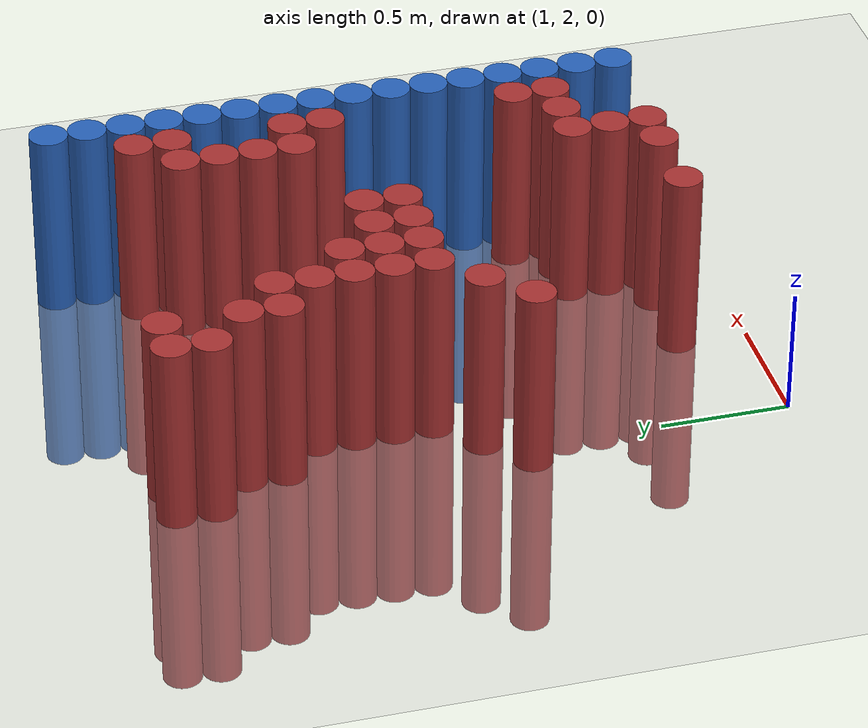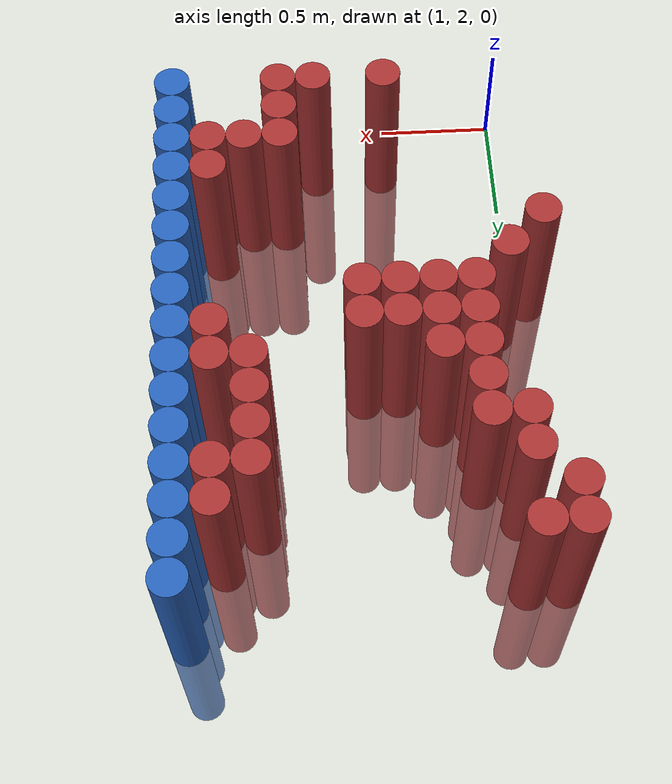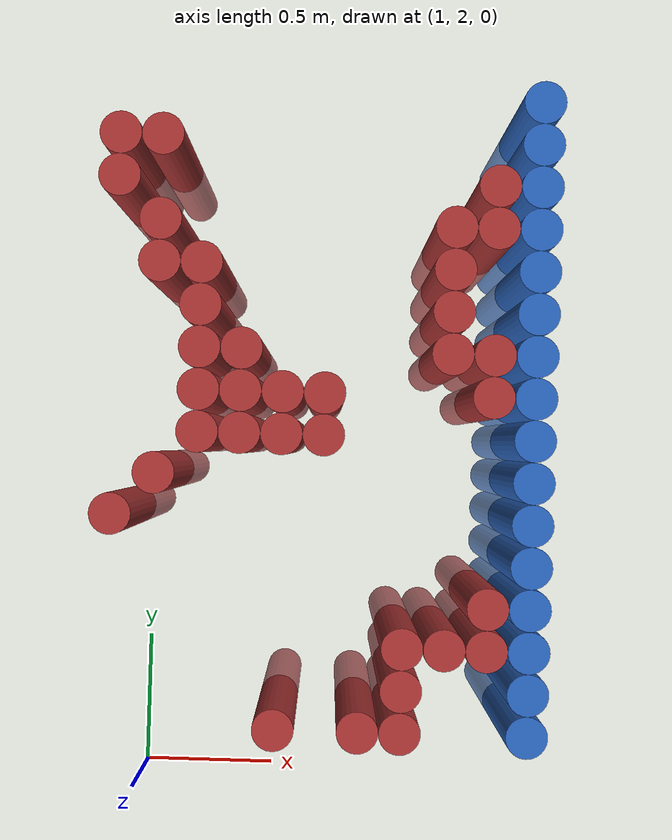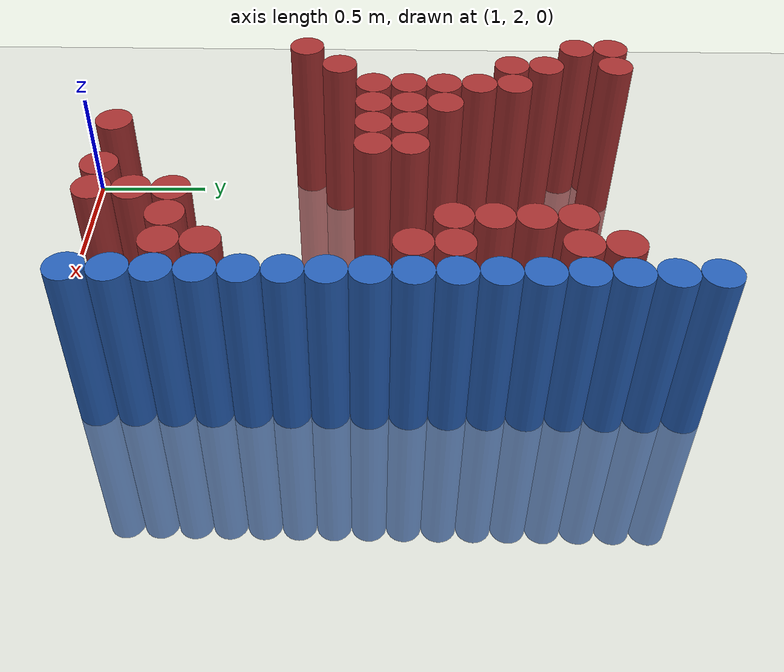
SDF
<sdf version="1.6">
 <world name="default">
  <model name="ground_plane">
   <static>1</static>
   <link name="link">
    <collision name="collision">
     <geometry><plane><normal>0 0 1</normal><size>100 100</size></plane></geometry>
     <surface><friction><ode><mu>100</mu><mu2>50</mu2></ode></friction></surface>
    </collision>
    <visual name="visual">
     <cast_shadows>0</cast_shadows>
     <geometry><plane><normal>0 0 1</normal><size>100 100</size></plane></geometry>
     <material>
      <script><uri>file://media/materials/scripts/gazebo.material</uri><name>Gazebo/Grey</name></script>
     </material>
    </visual>
   </link>
  </model>
  <model name="unit_cylinder_154">
   <static>1</static>
   <pose>0.925000 3.025000 0.000000 0.000000 0.000000 0.000000</pose>
   <link name="link">
    <inertial>
     <mass>1</mass>
     <inertia><ixx>0.145833</ixx><ixy>0</ixy><ixz>0</ixz><iyy>0.145833</iyy><iyz>0</iyz><izz>0.125</izz></inertia>
    </inertial>
    <collision name="collision">
     <geometry><cylinder><radius>0.075000</radius><length>1.5</length></cylinder></geometry>
    </collision>
    <visual name="visual">
     <geometry><cylinder><radius>0.075000</radius><length>1.5</length></cylinder></geometry>
     <material>
      <ambient>0.648000 0.192000 0.192000 1</ambient>
      <diffuse>0.648000 0.192000 0.192000 1</diffuse>
     </material>
     <material>
      <script><name>Gazebo/Grey</name><uri>file://media/materials/scripts/gazebo.material</uri></script>
     </material>
    </visual>
   </link>
  </model>
  <model name="unit_cylinder_155">
   <static>1</static>
   <pose>0.925000 4.225000 0.000000 0.000000 0.000000 0.000000</pose>
   <link name="link">
    <inertial>
     <mass>1</mass>
     <inertia><ixx>0.145833</ixx><ixy>0</ixy><ixz>0</ixz><iyy>0.145833</iyy><iyz>0</iyz><izz>0.125</izz></inertia>
    </inertial>
    <collision name="collision">
     <geometry><cylinder><radius>0.075000</radius><length>1.5</length></cylinder></geometry>
    </collision>
    <visual name="visual">
     <geometry><cylinder><radius>0.075000</radius><length>1.5</length></cylinder></geometry>
     <material>
      <ambient>0.648000 0.192000 0.192000 1</ambient>
      <diffuse>0.648000 0.192000 0.192000 1</diffuse>
     </material>
     <material>
      <script><name>Gazebo/Grey</name><uri>file://media/materials/scripts/gazebo.material</uri></script>
     </material>
    </visual>
   </link>
  </model>
  <model name="unit_cylinder_156">
   <static>1</static>
   <pose>0.925000 4.375000 0.000000 0.000000 0.000000 0.000000</pose>
   <link name="link">
    <inertial>
     <mass>1</mass>
     <inertia><ixx>0.145833</ixx><ixy>0</ixy><ixz>0</ixz><iyy>0.145833</iyy><iyz>0</iyz><izz>0.125</izz></inertia>
    </inertial>
    <collision name="collision">
     <geometry><cylinder><radius>0.075000</radius><length>1.5</length></cylinder></geometry>
    </collision>
    <visual name="visual">
     <geometry><cylinder><radius>0.075000</radius><length>1.5</length></cylinder></geometry>
     <material>
      <ambient>0.648000 0.192000 0.192000 1</ambient>
      <diffuse>0.648000 0.192000 0.192000 1</diffuse>
     </material>
     <material>
      <script><name>Gazebo/Grey</name><uri>file://media/materials/scripts/gazebo.material</uri></script>
     </material>
    </visual>
   </link>
  </model>
  <model name="unit_cylinder_159">
   <static>1</static>
   <pose>1.075000 3.175000 0.000000 0.000000 0.000000 0.000000</pose>
   <link name="link">
    <inertial>
     <mass>1</mass>
     <inertia><ixx>0.145833</ixx><ixy>0</ixy><ixz>0</ixz><iyy>0.145833</iyy><iyz>0</iyz><izz>0.125</izz></inertia>
    </inertial>
    <collision name="collision">
     <geometry><cylinder><radius>0.075000</radius><length>1.5</length></cylinder></geometry>
    </collision>
    <visual name="visual">
     <geometry><cylinder><radius>0.075000</radius><length>1.5</length></cylinder></geometry>
     <material>
      <ambient>0.648000 0.192000 0.192000 1</ambient>
      <diffuse>0.648000 0.192000 0.192000 1</diffuse>
     </material>
     <material>
      <script><name>Gazebo/Grey</name><uri>file://media/materials/scripts/gazebo.material</uri></script>
     </material>
    </visual>
   </link>
  </model>
  <model name="unit_cylinder_160">
   <static>1</static>
   <pose>1.075000 3.925000 0.000000 0.000000 0.000000 0.000000</pose>
   <link name="link">
    <inertial>
     <mass>1</mass>
     <inertia><ixx>0.145833</ixx><ixy>0</ixy><ixz>0</ixz><iyy>0.145833</iyy><iyz>0</iyz><izz>0.125</izz></inertia>
    </inertial>
    <collision name="collision">
     <geometry><cylinder><radius>0.075000</radius><length>1.5</length></cylinder></geometry>
    </collision>
    <visual name="visual">
     <geometry><cylinder><radius>0.075000</radius><length>1.5</length></cylinder></geometry>
     <material>
      <ambient>0.648000 0.192000 0.192000 1</ambient>
      <diffuse>0.648000 0.192000 0.192000 1</diffuse>
     </material>
     <material>
      <script><name>Gazebo/Grey</name><uri>file://media/materials/scripts/gazebo.material</uri></script>
     </material>
    </visual>
   </link>
  </model>
  <model name="unit_cylinder_161">
   <static>1</static>
   <pose>1.075000 4.075000 0.000000 0.000000 0.000000 0.000000</pose>
   <link name="link">
    <inertial>
     <mass>1</mass>
     <inertia><ixx>0.145833</ixx><ixy>0</ixy><ixz>0</ixz><iyy>0.145833</iyy><iyz>0</iyz><izz>0.125</izz></inertia>
    </inertial>
    <collision name="collision">
     <geometry><cylinder><radius>0.075000</radius><length>1.5</length></cylinder></geometry>
    </collision>
    <visual name="visual">
     <geometry><cylinder><radius>0.075000</radius><length>1.5</length></cylinder></geometry>
     <material>
      <ambient>0.648000 0.192000 0.192000 1</ambient>
      <diffuse>0.648000 0.192000 0.192000 1</diffuse>
     </material>
     <material>
      <script><name>Gazebo/Grey</name><uri>file://media/materials/scripts/gazebo.material</uri></script>
     </material>
    </visual>
   </link>
  </model>
  <model name="unit_cylinder_162">
   <static>1</static>
   <pose>1.075000 4.375000 0.000000 0.000000 0.000000 0.000000</pose>
   <link name="link">
    <inertial>
     <mass>1</mass>
     <inertia><ixx>0.145833</ixx><ixy>0</ixy><ixz>0</ixz><iyy>0.145833</iyy><iyz>0</iyz><izz>0.125</izz></inertia>
    </inertial>
    <collision name="collision">
     <geometry><cylinder><radius>0.075000</radius><length>1.5</length></cylinder></geometry>
    </collision>
    <visual name="visual">
     <geometry><cylinder><radius>0.075000</radius><length>1.5</length></cylinder></geometry>
     <material>
      <ambient>0.648000 0.192000 0.192000 1</ambient>
      <diffuse>0.648000 0.192000 0.192000 1</diffuse>
     </material>
     <material>
      <script><name>Gazebo/Grey</name><uri>file://media/materials/scripts/gazebo.material</uri></script>
     </material>
    </visual>
   </link>
  </model>
  <model name="unit_cylinder_165">
   <static>1</static>
   <pose>1.225000 3.325000 0.000000 0.000000 0.000000 0.000000</pose>
   <link name="link">
    <inertial>
     <mass>1</mass>
     <inertia><ixx>0.145833</ixx><ixy>0</ixy><ixz>0</ixz><iyy>0.145833</iyy><iyz>0</iyz><izz>0.125</izz></inertia>
    </inertial>
    <collision name="collision">
     <geometry><cylinder><radius>0.075000</radius><length>1.5</length></cylinder></geometry>
    </collision>
    <visual name="visual">
     <geometry><cylinder><radius>0.075000</radius><length>1.5</length></cylinder></geometry>
     <material>
      <ambient>0.648000 0.192000 0.192000 1</ambient>
      <diffuse>0.648000 0.192000 0.192000 1</diffuse>
     </material>
     <material>
      <script><name>Gazebo/Grey</name><uri>file://media/materials/scripts/gazebo.material</uri></script>
     </material>
    </visual>
   </link>
  </model>
  <model name="unit_cylinder_166">
   <static>1</static>
   <pose>1.225000 3.475000 0.000000 0.000000 0.000000 0.000000</pose>
   <link name="link">
    <inertial>
     <mass>1</mass>
     <inertia><ixx>0.145833</ixx><ixy>0</ixy><ixz>0</ixz><iyy>0.145833</iyy><iyz>0</iyz><izz>0.125</izz></inertia>
    </inertial>
    <collision name="collision">
     <geometry><cylinder><radius>0.075000</radius><length>1.5</length></cylinder></geometry>
    </collision>
    <visual name="visual">
     <geometry><cylinder><radius>0.075000</radius><length>1.5</length></cylinder></geometry>
     <material>
      <ambient>0.648000 0.192000 0.192000 1</ambient>
      <diffuse>0.648000 0.192000 0.192000 1</diffuse>
     </material>
     <material>
      <script><name>Gazebo/Grey</name><uri>file://media/materials/scripts/gazebo.material</uri></script>
     </material>
    </visual>
   </link>
  </model>
  <model name="unit_cylinder_167">
   <static>1</static>
   <pose>1.225000 3.625000 0.000000 0.000000 0.000000 0.000000</pose>
   <link name="link">
    <inertial>
     <mass>1</mass>
     <inertia><ixx>0.145833</ixx><ixy>0</ixy><ixz>0</ixz><iyy>0.145833</iyy><iyz>0</iyz><izz>0.125</izz></inertia>
    </inertial>
    <collision name="collision">
     <geometry><cylinder><radius>0.075000</radius><length>1.5</length></cylinder></geometry>
    </collision>
    <visual name="visual">
     <geometry><cylinder><radius>0.075000</radius><length>1.5</length></cylinder></geometry>
     <material>
      <ambient>0.648000 0.192000 0.192000 1</ambient>
      <diffuse>0.648000 0.192000 0.192000 1</diffuse>
     </material>
     <material>
      <script><name>Gazebo/Grey</name><uri>file://media/materials/scripts/gazebo.material</uri></script>
     </material>
    </visual>
   </link>
  </model>
  <model name="unit_cylinder_168">
   <static>1</static>
   <pose>1.225000 3.775000 0.000000 0.000000 0.000000 0.000000</pose>
   <link name="link">
    <inertial>
     <mass>1</mass>
     <inertia><ixx>0.145833</ixx><ixy>0</ixy><ixz>0</ixz><iyy>0.145833</iyy><iyz>0</iyz><izz>0.125</izz></inertia>
    </inertial>
    <collision name="collision">
     <geometry><cylinder><radius>0.075000</radius><length>1.5</length></cylinder></geometry>
    </collision>
    <visual name="visual">
     <geometry><cylinder><radius>0.075000</radius><length>1.5</length></cylinder></geometry>
     <material>
      <ambient>0.648000 0.192000 0.192000 1</ambient>
      <diffuse>0.648000 0.192000 0.192000 1</diffuse>
     </material>
     <material>
      <script><name>Gazebo/Grey</name><uri>file://media/materials/scripts/gazebo.material</uri></script>
     </material>
    </visual>
   </link>
  </model>
  <model name="unit_cylinder_169">
   <static>1</static>
   <pose>1.225000 3.925000 0.000000 0.000000 0.000000 0.000000</pose>
   <link name="link">
    <inertial>
     <mass>1</mass>
     <inertia><ixx>0.145833</ixx><ixy>0</ixy><ixz>0</ixz><iyy>0.145833</iyy><iyz>0</iyz><izz>0.125</izz></inertia>
    </inertial>
    <collision name="collision">
     <geometry><cylinder><radius>0.075000</radius><length>1.5</length></cylinder></geometry>
    </collision>
    <visual name="visual">
     <geometry><cylinder><radius>0.075000</radius><length>1.5</length></cylinder></geometry>
     <material>
      <ambient>0.648000 0.192000 0.192000 1</ambient>
      <diffuse>0.648000 0.192000 0.192000 1</diffuse>
     </material>
     <material>
      <script><name>Gazebo/Grey</name><uri>file://media/materials/scripts/gazebo.material</uri></script>
     </material>
    </visual>
   </link>
  </model>
  <model name="unit_cylinder_174">
   <static>1</static>
   <pose>1.375000 3.325000 0.000000 0.000000 0.000000 0.000000</pose>
   <link name="link">
    <inertial>
     <mass>1</mass>
     <inertia><ixx>0.145833</ixx><ixy>0</ixy><ixz>0</ixz><iyy>0.145833</iyy><iyz>0</iyz><izz>0.125</izz></inertia>
    </inertial>
    <collision name="collision">
     <geometry><cylinder><radius>0.075000</radius><length>1.5</length></cylinder></geometry>
    </collision>
    <visual name="visual">
     <geometry><cylinder><radius>0.075000</radius><length>1.5</length></cylinder></geometry>
     <material>
      <ambient>0.648000 0.192000 0.192000 1</ambient>
      <diffuse>0.648000 0.192000 0.192000 1</diffuse>
     </material>
     <material>
      <script><name>Gazebo/Grey</name><uri>file://media/materials/scripts/gazebo.material</uri></script>
     </material>
    </visual>
   </link>
  </model>
  <model name="unit_cylinder_175">
   <static>1</static>
   <pose>1.375000 3.475000 0.000000 0.000000 0.000000 0.000000</pose>
   <link name="link">
    <inertial>
     <mass>1</mass>
     <inertia><ixx>0.145833</ixx><ixy>0</ixy><ixz>0</ixz><iyy>0.145833</iyy><iyz>0</iyz><izz>0.125</izz></inertia>
    </inertial>
    <collision name="collision">
     <geometry><cylinder><radius>0.075000</radius><length>1.5</length></cylinder></geometry>
    </collision>
    <visual name="visual">
     <geometry><cylinder><radius>0.075000</radius><length>1.5</length></cylinder></geometry>
     <material>
      <ambient>0.648000 0.192000 0.192000 1</ambient>
      <diffuse>0.648000 0.192000 0.192000 1</diffuse>
     </material>
     <material>
      <script><name>Gazebo/Grey</name><uri>file://media/materials/scripts/gazebo.material</uri></script>
     </material>
    </visual>
   </link>
  </model>
  <model name="unit_cylinder_176">
   <static>1</static>
   <pose>1.375000 3.625000 0.000000 0.000000 0.000000 0.000000</pose>
   <link name="link">
    <inertial>
     <mass>1</mass>
     <inertia><ixx>0.145833</ixx><ixy>0</ixy><ixz>0</ixz><iyy>0.145833</iyy><iyz>0</iyz><izz>0.125</izz></inertia>
    </inertial>
    <collision name="collision">
     <geometry><cylinder><radius>0.075000</radius><length>1.5</length></cylinder></geometry>
    </collision>
    <visual name="visual">
     <geometry><cylinder><radius>0.075000</radius><length>1.5</length></cylinder></geometry>
     <material>
      <ambient>0.648000 0.192000 0.192000 1</ambient>
      <diffuse>0.648000 0.192000 0.192000 1</diffuse>
     </material>
     <material>
      <script><name>Gazebo/Grey</name><uri>file://media/materials/scripts/gazebo.material</uri></script>
     </material>
    </visual>
   </link>
  </model>
  <model name="unit_cylinder_180">
   <static>1</static>
   <pose>1.525000 2.275000 0.000000 0.000000 0.000000 0.000000</pose>
   <link name="link">
    <inertial>
     <mass>1</mass>
     <inertia><ixx>0.145833</ixx><ixy>0</ixy><ixz>0</ixz><iyy>0.145833</iyy><iyz>0</iyz><izz>0.125</izz></inertia>
    </inertial>
    <collision name="collision">
     <geometry><cylinder><radius>0.075000</radius><length>1.5</length></cylinder></geometry>
    </collision>
    <visual name="visual">
     <geometry><cylinder><radius>0.075000</radius><length>1.5</length></cylinder></geometry>
     <material>
      <ambient>0.648000 0.192000 0.192000 1</ambient>
      <diffuse>0.648000 0.192000 0.192000 1</diffuse>
     </material>
     <material>
      <script><name>Gazebo/Grey</name><uri>file://media/materials/scripts/gazebo.material</uri></script>
     </material>
    </visual>
   </link>
  </model>
  <model name="unit_cylinder_181">
   <static>1</static>
   <pose>1.525000 3.325000 0.000000 0.000000 0.000000 0.000000</pose>
   <link name="link">
    <inertial>
     <mass>1</mass>
     <inertia><ixx>0.145833</ixx><ixy>0</ixy><ixz>0</ixz><iyy>0.145833</iyy><iyz>0</iyz><izz>0.125</izz></inertia>
    </inertial>
    <collision name="collision">
     <geometry><cylinder><radius>0.075000</radius><length>1.5</length></cylinder></geometry>
    </collision>
    <visual name="visual">
     <geometry><cylinder><radius>0.075000</radius><length>1.5</length></cylinder></geometry>
     <material>
      <ambient>0.648000 0.192000 0.192000 1</ambient>
      <diffuse>0.648000 0.192000 0.192000 1</diffuse>
     </material>
     <material>
      <script><name>Gazebo/Grey</name><uri>file://media/materials/scripts/gazebo.material</uri></script>
     </material>
    </visual>
   </link>
  </model>
  <model name="unit_cylinder_182">
   <static>1</static>
   <pose>1.525000 3.475000 0.000000 0.000000 0.000000 0.000000</pose>
   <link name="link">
    <inertial>
     <mass>1</mass>
     <inertia><ixx>0.145833</ixx><ixy>0</ixy><ixz>0</ixz><iyy>0.145833</iyy><iyz>0</iyz><izz>0.125</izz></inertia>
    </inertial>
    <collision name="collision">
     <geometry><cylinder><radius>0.075000</radius><length>1.5</length></cylinder></geometry>
    </collision>
    <visual name="visual">
     <geometry><cylinder><radius>0.075000</radius><length>1.5</length></cylinder></geometry>
     <material>
      <ambient>0.648000 0.192000 0.192000 1</ambient>
      <diffuse>0.648000 0.192000 0.192000 1</diffuse>
     </material>
     <material>
      <script><name>Gazebo/Grey</name><uri>file://media/materials/scripts/gazebo.material</uri></script>
     </material>
    </visual>
   </link>
  </model>
  <model name="unit_cylinder_185">
   <static>1</static>
   <pose>1.675000 3.325000 0.000000 0.000000 0.000000 0.000000</pose>
   <link name="link">
    <inertial>
     <mass>1</mass>
     <inertia><ixx>0.145833</ixx><ixy>0</ixy><ixz>0</ixz><iyy>0.145833</iyy><iyz>0</iyz><izz>0.125</izz></inertia>
    </inertial>
    <collision name="collision">
     <geometry><cylinder><radius>0.075000</radius><length>1.5</length></cylinder></geometry>
    </collision>
    <visual name="visual">
     <geometry><cylinder><radius>0.075000</radius><length>1.5</length></cylinder></geometry>
     <material>
      <ambient>0.648000 0.192000 0.192000 1</ambient>
      <diffuse>0.648000 0.192000 0.192000 1</diffuse>
     </material>
     <material>
      <script><name>Gazebo/Grey</name><uri>file://media/materials/scripts/gazebo.material</uri></script>
     </material>
    </visual>
   </link>
  </model>
  <model name="unit_cylinder_186">
   <static>1</static>
   <pose>1.675000 3.475000 0.000000 0.000000 0.000000 0.000000</pose>
   <link name="link">
    <inertial>
     <mass>1</mass>
     <inertia><ixx>0.145833</ixx><ixy>0</ixy><ixz>0</ixz><iyy>0.145833</iyy><iyz>0</iyz><izz>0.125</izz></inertia>
    </inertial>
    <collision name="collision">
     <geometry><cylinder><radius>0.075000</radius><length>1.5</length></cylinder></geometry>
    </collision>
    <visual name="visual">
     <geometry><cylinder><radius>0.075000</radius><length>1.5</length></cylinder></geometry>
     <material>
      <ambient>0.648000 0.192000 0.192000 1</ambient>
      <diffuse>0.648000 0.192000 0.192000 1</diffuse>
     </material>
     <material>
      <script><name>Gazebo/Grey</name><uri>file://media/materials/scripts/gazebo.material</uri></script>
     </material>
    </visual>
   </link>
  </model>
  <model name="unit_cylinder_195">
   <static>1</static>
   <pose>1.825000 2.275000 0.000000 0.000000 0.000000 0.000000</pose>
   <link name="link">
    <inertial>
     <mass>1</mass>
     <inertia><ixx>0.145833</ixx><ixy>0</ixy><ixz>0</ixz><iyy>0.145833</iyy><iyz>0</iyz><izz>0.125</izz></inertia>
    </inertial>
    <collision name="collision">
     <geometry><cylinder><radius>0.075000</radius><length>1.5</length></cylinder></geometry>
    </collision>
    <visual name="visual">
     <geometry><cylinder><radius>0.075000</radius><length>1.5</length></cylinder></geometry>
     <material>
      <ambient>0.648000 0.192000 0.192000 1</ambient>
      <diffuse>0.648000 0.192000 0.192000 1</diffuse>
     </material>
     <material>
      <script><name>Gazebo/Grey</name><uri>file://media/materials/scripts/gazebo.material</uri></script>
     </material>
    </visual>
   </link>
  </model>
  <model name="unit_cylinder_202">
   <static>1</static>
   <pose>1.975000 2.275000 0.000000 0.000000 0.000000 0.000000</pose>
   <link name="link">
    <inertial>
     <mass>1</mass>
     <inertia><ixx>0.145833</ixx><ixy>0</ixy><ixz>0</ixz><iyy>0.145833</iyy><iyz>0</iyz><izz>0.125</izz></inertia>
    </inertial>
    <collision name="collision">
     <geometry><cylinder><radius>0.075000</radius><length>1.5</length></cylinder></geometry>
    </collision>
    <visual name="visual">
     <geometry><cylinder><radius>0.075000</radius><length>1.5</length></cylinder></geometry>
     <material>
      <ambient>0.648000 0.192000 0.192000 1</ambient>
      <diffuse>0.648000 0.192000 0.192000 1</diffuse>
     </material>
     <material>
      <script><name>Gazebo/Grey</name><uri>file://media/materials/scripts/gazebo.material</uri></script>
     </material>
    </visual>
   </link>
  </model>
  <model name="unit_cylinder_203">
   <static>1</static>
   <pose>1.975000 2.425000 0.000000 0.000000 0.000000 0.000000</pose>
   <link name="link">
    <inertial>
     <mass>1</mass>
     <inertia><ixx>0.145833</ixx><ixy>0</ixy><ixz>0</ixz><iyy>0.145833</iyy><iyz>0</iyz><izz>0.125</izz></inertia>
    </inertial>
    <collision name="collision">
     <geometry><cylinder><radius>0.075000</radius><length>1.5</length></cylinder></geometry>
    </collision>
    <visual name="visual">
     <geometry><cylinder><radius>0.075000</radius><length>1.5</length></cylinder></geometry>
     <material>
      <ambient>0.648000 0.192000 0.192000 1</ambient>
      <diffuse>0.648000 0.192000 0.192000 1</diffuse>
     </material>
     <material>
      <script><name>Gazebo/Grey</name><uri>file://media/materials/scripts/gazebo.material</uri></script>
     </material>
    </visual>
   </link>
  </model>
  <model name="unit_cylinder_204">
   <static>1</static>
   <pose>1.975000 2.575000 0.000000 0.000000 0.000000 0.000000</pose>
   <link name="link">
    <inertial>
     <mass>1</mass>
     <inertia><ixx>0.145833</ixx><ixy>0</ixy><ixz>0</ixz><iyy>0.145833</iyy><iyz>0</iyz><izz>0.125</izz></inertia>
    </inertial>
    <collision name="collision">
     <geometry><cylinder><radius>0.075000</radius><length>1.5</length></cylinder></geometry>
    </collision>
    <visual name="visual">
     <geometry><cylinder><radius>0.075000</radius><length>1.5</length></cylinder></geometry>
     <material>
      <ambient>0.648000 0.192000 0.192000 1</ambient>
      <diffuse>0.648000 0.192000 0.192000 1</diffuse>
     </material>
     <material>
      <script><name>Gazebo/Grey</name><uri>file://media/materials/scripts/gazebo.material</uri></script>
     </material>
    </visual>
   </link>
  </model>
  <model name="unit_cylinder_209">
   <static>1</static>
   <pose>2.125000 2.575000 0.000000 0.000000 0.000000 0.000000</pose>
   <link name="link">
    <inertial>
     <mass>1</mass>
     <inertia><ixx>0.145833</ixx><ixy>0</ixy><ixz>0</ixz><iyy>0.145833</iyy><iyz>0</iyz><izz>0.125</izz></inertia>
    </inertial>
    <collision name="collision">
     <geometry><cylinder><radius>0.075000</radius><length>1.5</length></cylinder></geometry>
    </collision>
    <visual name="visual">
     <geometry><cylinder><radius>0.075000</radius><length>1.5</length></cylinder></geometry>
     <material>
      <ambient>0.648000 0.192000 0.192000 1</ambient>
      <diffuse>0.648000 0.192000 0.192000 1</diffuse>
     </material>
     <material>
      <script><name>Gazebo/Grey</name><uri>file://media/materials/scripts/gazebo.material</uri></script>
     </material>
    </visual>
   </link>
  </model>
  <model name="unit_cylinder_210">
   <static>1</static>
   <pose>2.125000 3.625000 0.000000 0.000000 0.000000 0.000000</pose>
   <link name="link">
    <inertial>
     <mass>1</mass>
     <inertia><ixx>0.145833</ixx><ixy>0</ixy><ixz>0</ixz><iyy>0.145833</iyy><iyz>0</iyz><izz>0.125</izz></inertia>
    </inertial>
    <collision name="collision">
     <geometry><cylinder><radius>0.075000</radius><length>1.5</length></cylinder></geometry>
    </collision>
    <visual name="visual">
     <geometry><cylinder><radius>0.075000</radius><length>1.5</length></cylinder></geometry>
     <material>
      <ambient>0.648000 0.192000 0.192000 1</ambient>
      <diffuse>0.648000 0.192000 0.192000 1</diffuse>
     </material>
     <material>
      <script><name>Gazebo/Grey</name><uri>file://media/materials/scripts/gazebo.material</uri></script>
     </material>
    </visual>
   </link>
  </model>
  <model name="unit_cylinder_211">
   <static>1</static>
   <pose>2.125000 3.775000 0.000000 0.000000 0.000000 0.000000</pose>
   <link name="link">
    <inertial>
     <mass>1</mass>
     <inertia><ixx>0.145833</ixx><ixy>0</ixy><ixz>0</ixz><iyy>0.145833</iyy><iyz>0</iyz><izz>0.125</izz></inertia>
    </inertial>
    <collision name="collision">
     <geometry><cylinder><radius>0.075000</radius><length>1.5</length></cylinder></geometry>
    </collision>
    <visual name="visual">
     <geometry><cylinder><radius>0.075000</radius><length>1.5</length></cylinder></geometry>
     <material>
      <ambient>0.648000 0.192000 0.192000 1</ambient>
      <diffuse>0.648000 0.192000 0.192000 1</diffuse>
     </material>
     <material>
      <script><name>Gazebo/Grey</name><uri>file://media/materials/scripts/gazebo.material</uri></script>
     </material>
    </visual>
   </link>
  </model>
  <model name="unit_cylinder_212">
   <static>1</static>
   <pose>2.125000 3.925000 0.000000 0.000000 0.000000 0.000000</pose>
   <link name="link">
    <inertial>
     <mass>1</mass>
     <inertia><ixx>0.145833</ixx><ixy>0</ixy><ixz>0</ixz><iyy>0.145833</iyy><iyz>0</iyz><izz>0.125</izz></inertia>
    </inertial>
    <collision name="collision">
     <geometry><cylinder><radius>0.075000</radius><length>1.5</length></cylinder></geometry>
    </collision>
    <visual name="visual">
     <geometry><cylinder><radius>0.075000</radius><length>1.5</length></cylinder></geometry>
     <material>
      <ambient>0.648000 0.192000 0.192000 1</ambient>
      <diffuse>0.648000 0.192000 0.192000 1</diffuse>
     </material>
     <material>
      <script><name>Gazebo/Grey</name><uri>file://media/materials/scripts/gazebo.material</uri></script>
     </material>
    </visual>
   </link>
  </model>
  <model name="unit_cylinder_213">
   <static>1</static>
   <pose>2.125000 4.075000 0.000000 0.000000 0.000000 0.000000</pose>
   <link name="link">
    <inertial>
     <mass>1</mass>
     <inertia><ixx>0.145833</ixx><ixy>0</ixy><ixz>0</ixz><iyy>0.145833</iyy><iyz>0</iyz><izz>0.125</izz></inertia>
    </inertial>
    <collision name="collision">
     <geometry><cylinder><radius>0.075000</radius><length>1.5</length></cylinder></geometry>
    </collision>
    <visual name="visual">
     <geometry><cylinder><radius>0.075000</radius><length>1.5</length></cylinder></geometry>
     <material>
      <ambient>0.648000 0.192000 0.192000 1</ambient>
      <diffuse>0.648000 0.192000 0.192000 1</diffuse>
     </material>
     <material>
      <script><name>Gazebo/Grey</name><uri>file://media/materials/scripts/gazebo.material</uri></script>
     </material>
    </visual>
   </link>
  </model>
  <model name="unit_cylinder_218">
   <static>1</static>
   <pose>2.275000 2.575000 0.000000 0.000000 0.000000 0.000000</pose>
   <link name="link">
    <inertial>
     <mass>1</mass>
     <inertia><ixx>0.145833</ixx><ixy>0</ixy><ixz>0</ixz><iyy>0.145833</iyy><iyz>0</iyz><izz>0.125</izz></inertia>
    </inertial>
    <collision name="collision">
     <geometry><cylinder><radius>0.075000</radius><length>1.5</length></cylinder></geometry>
    </collision>
    <visual name="visual">
     <geometry><cylinder><radius>0.075000</radius><length>1.5</length></cylinder></geometry>
     <material>
      <ambient>0.648000 0.192000 0.192000 1</ambient>
      <diffuse>0.648000 0.192000 0.192000 1</diffuse>
     </material>
     <material>
      <script><name>Gazebo/Grey</name><uri>file://media/materials/scripts/gazebo.material</uri></script>
     </material>
    </visual>
   </link>
  </model>
  <model name="unit_cylinder_219">
   <static>1</static>
   <pose>2.275000 2.725000 0.000000 0.000000 0.000000 0.000000</pose>
   <link name="link">
    <inertial>
     <mass>1</mass>
     <inertia><ixx>0.145833</ixx><ixy>0</ixy><ixz>0</ixz><iyy>0.145833</iyy><iyz>0</iyz><izz>0.125</izz></inertia>
    </inertial>
    <collision name="collision">
     <geometry><cylinder><radius>0.075000</radius><length>1.5</length></cylinder></geometry>
    </collision>
    <visual name="visual">
     <geometry><cylinder><radius>0.075000</radius><length>1.5</length></cylinder></geometry>
     <material>
      <ambient>0.648000 0.192000 0.192000 1</ambient>
      <diffuse>0.648000 0.192000 0.192000 1</diffuse>
     </material>
     <material>
      <script><name>Gazebo/Grey</name><uri>file://media/materials/scripts/gazebo.material</uri></script>
     </material>
    </visual>
   </link>
  </model>
  <model name="unit_cylinder_220">
   <static>1</static>
   <pose>2.275000 3.475000 0.000000 0.000000 0.000000 0.000000</pose>
   <link name="link">
    <inertial>
     <mass>1</mass>
     <inertia><ixx>0.145833</ixx><ixy>0</ixy><ixz>0</ixz><iyy>0.145833</iyy><iyz>0</iyz><izz>0.125</izz></inertia>
    </inertial>
    <collision name="collision">
     <geometry><cylinder><radius>0.075000</radius><length>1.5</length></cylinder></geometry>
    </collision>
    <visual name="visual">
     <geometry><cylinder><radius>0.075000</radius><length>1.5</length></cylinder></geometry>
     <material>
      <ambient>0.648000 0.192000 0.192000 1</ambient>
      <diffuse>0.648000 0.192000 0.192000 1</diffuse>
     </material>
     <material>
      <script><name>Gazebo/Grey</name><uri>file://media/materials/scripts/gazebo.material</uri></script>
     </material>
    </visual>
   </link>
  </model>
  <model name="unit_cylinder_221">
   <static>1</static>
   <pose>2.275000 3.625000 0.000000 0.000000 0.000000 0.000000</pose>
   <link name="link">
    <inertial>
     <mass>1</mass>
     <inertia><ixx>0.145833</ixx><ixy>0</ixy><ixz>0</ixz><iyy>0.145833</iyy><iyz>0</iyz><izz>0.125</izz></inertia>
    </inertial>
    <collision name="collision">
     <geometry><cylinder><radius>0.075000</radius><length>1.5</length></cylinder></geometry>
    </collision>
    <visual name="visual">
     <geometry><cylinder><radius>0.075000</radius><length>1.5</length></cylinder></geometry>
     <material>
      <ambient>0.648000 0.192000 0.192000 1</ambient>
      <diffuse>0.648000 0.192000 0.192000 1</diffuse>
     </material>
     <material>
      <script><name>Gazebo/Grey</name><uri>file://media/materials/scripts/gazebo.material</uri></script>
     </material>
    </visual>
   </link>
  </model>
  <model name="unit_cylinder_222">
   <static>1</static>
   <pose>2.275000 4.075000 0.000000 0.000000 0.000000 0.000000</pose>
   <link name="link">
    <inertial>
     <mass>1</mass>
     <inertia><ixx>0.145833</ixx><ixy>0</ixy><ixz>0</ixz><iyy>0.145833</iyy><iyz>0</iyz><izz>0.125</izz></inertia>
    </inertial>
    <collision name="collision">
     <geometry><cylinder><radius>0.075000</radius><length>1.5</length></cylinder></geometry>
    </collision>
    <visual name="visual">
     <geometry><cylinder><radius>0.075000</radius><length>1.5</length></cylinder></geometry>
     <material>
      <ambient>0.648000 0.192000 0.192000 1</ambient>
      <diffuse>0.648000 0.192000 0.192000 1</diffuse>
     </material>
     <material>
      <script><name>Gazebo/Grey</name><uri>file://media/materials/scripts/gazebo.material</uri></script>
     </material>
    </visual>
   </link>
  </model>
  <model name="unit_cylinder_223">
   <static>1</static>
   <pose>2.275000 4.225000 0.000000 0.000000 0.000000 0.000000</pose>
   <link name="link">
    <inertial>
     <mass>1</mass>
     <inertia><ixx>0.145833</ixx><ixy>0</ixy><ixz>0</ixz><iyy>0.145833</iyy><iyz>0</iyz><izz>0.125</izz></inertia>
    </inertial>
    <collision name="collision">
     <geometry><cylinder><radius>0.075000</radius><length>1.5</length></cylinder></geometry>
    </collision>
    <visual name="visual">
     <geometry><cylinder><radius>0.075000</radius><length>1.5</length></cylinder></geometry>
     <material>
      <ambient>0.648000 0.192000 0.192000 1</ambient>
      <diffuse>0.648000 0.192000 0.192000 1</diffuse>
     </material>
     <material>
      <script><name>Gazebo/Grey</name><uri>file://media/materials/scripts/gazebo.material</uri></script>
     </material>
    </visual>
   </link>
  </model>
  <model name="unit_cylinder_238">
   <static>1</static>
   <pose>2.425000 2.275000 0.000000 0.000000 0.000000 0.000000</pose>
   <link name="link">
    <inertial>
     <mass>1</mass>
     <inertia><ixx>0.145833</ixx><ixy>0</ixy><ixz>0</ixz><iyy>0.145833</iyy><iyz>0</iyz><izz>0.125</izz></inertia>
    </inertial>
    <collision name="collision">
     <geometry><cylinder><radius>0.075000</radius><length>1.5</length></cylinder></geometry>
    </collision>
    <visual name="visual">
     <geometry><cylinder><radius>0.075000</radius><length>1.5</length></cylinder></geometry>
     <material>
      <ambient>0.152000 0.379000 0.720000 1</ambient>
      <diffuse>0.152000 0.379000 0.720000 1</diffuse>
     </material>
     <material>
      <script><name>Gazebo/Grey</name><uri>file://media/materials/scripts/gazebo.material</uri></script>
     </material>
    </visual>
   </link>
  </model>
  <model name="unit_cylinder_239">
   <static>1</static>
   <pose>2.425000 2.425000 0.000000 0.000000 0.000000 0.000000</pose>
   <link name="link">
    <inertial>
     <mass>1</mass>
     <inertia><ixx>0.145833</ixx><ixy>0</ixy><ixz>0</ixz><iyy>0.145833</iyy><iyz>0</iyz><izz>0.125</izz></inertia>
    </inertial>
    <collision name="collision">
     <geometry><cylinder><radius>0.075000</radius><length>1.5</length></cylinder></geometry>
    </collision>
    <visual name="visual">
     <geometry><cylinder><radius>0.075000</radius><length>1.5</length></cylinder></geometry>
     <material>
      <ambient>0.152000 0.379000 0.720000 1</ambient>
      <diffuse>0.152000 0.379000 0.720000 1</diffuse>
     </material>
     <material>
      <script><name>Gazebo/Grey</name><uri>file://media/materials/scripts/gazebo.material</uri></script>
     </material>
    </visual>
   </link>
  </model>
  <model name="unit_cylinder_240">
   <static>1</static>
   <pose>2.425000 2.575000 0.000000 0.000000 0.000000 0.000000</pose>
   <link name="link">
    <inertial>
     <mass>1</mass>
     <inertia><ixx>0.145833</ixx><ixy>0</ixy><ixz>0</ixz><iyy>0.145833</iyy><iyz>0</iyz><izz>0.125</izz></inertia>
    </inertial>
    <collision name="collision">
     <geometry><cylinder><radius>0.075000</radius><length>1.5</length></cylinder></geometry>
    </collision>
    <visual name="visual">
     <geometry><cylinder><radius>0.075000</radius><length>1.5</length></cylinder></geometry>
     <material>
      <ambient>0.152000 0.379000 0.720000 1</ambient>
      <diffuse>0.152000 0.379000 0.720000 1</diffuse>
     </material>
     <material>
      <script><name>Gazebo/Grey</name><uri>file://media/materials/scripts/gazebo.material</uri></script>
     </material>
    </visual>
   </link>
  </model>
  <model name="unit_cylinder_241">
   <static>1</static>
   <pose>2.425000 2.725000 0.000000 0.000000 0.000000 0.000000</pose>
   <link name="link">
    <inertial>
     <mass>1</mass>
     <inertia><ixx>0.145833</ixx><ixy>0</ixy><ixz>0</ixz><iyy>0.145833</iyy><iyz>0</iyz><izz>0.125</izz></inertia>
    </inertial>
    <collision name="collision">
     <geometry><cylinder><radius>0.075000</radius><length>1.5</length></cylinder></geometry>
    </collision>
    <visual name="visual">
     <geometry><cylinder><radius>0.075000</radius><length>1.5</length></cylinder></geometry>
     <material>
      <ambient>0.152000 0.379000 0.720000 1</ambient>
      <diffuse>0.152000 0.379000 0.720000 1</diffuse>
     </material>
     <material>
      <script><name>Gazebo/Grey</name><uri>file://media/materials/scripts/gazebo.material</uri></script>
     </material>
    </visual>
   </link>
  </model>
  <model name="unit_cylinder_242">
   <static>1</static>
   <pose>2.425000 2.875000 0.000000 0.000000 0.000000 0.000000</pose>
   <link name="link">
    <inertial>
     <mass>1</mass>
     <inertia><ixx>0.145833</ixx><ixy>0</ixy><ixz>0</ixz><iyy>0.145833</iyy><iyz>0</iyz><izz>0.125</izz></inertia>
    </inertial>
    <collision name="collision">
     <geometry><cylinder><radius>0.075000</radius><length>1.5</length></cylinder></geometry>
    </collision>
    <visual name="visual">
     <geometry><cylinder><radius>0.075000</radius><length>1.5</length></cylinder></geometry>
     <material>
      <ambient>0.152000 0.379000 0.720000 1</ambient>
      <diffuse>0.152000 0.379000 0.720000 1</diffuse>
     </material>
     <material>
      <script><name>Gazebo/Grey</name><uri>file://media/materials/scripts/gazebo.material</uri></script>
     </material>
    </visual>
   </link>
  </model>
  <model name="unit_cylinder_243">
   <static>1</static>
   <pose>2.425000 3.025000 0.000000 0.000000 0.000000 0.000000</pose>
   <link name="link">
    <inertial>
     <mass>1</mass>
     <inertia><ixx>0.145833</ixx><ixy>0</ixy><ixz>0</ixz><iyy>0.145833</iyy><iyz>0</iyz><izz>0.125</izz></inertia>
    </inertial>
    <collision name="collision">
     <geometry><cylinder><radius>0.075000</radius><length>1.5</length></cylinder></geometry>
    </collision>
    <visual name="visual">
     <geometry><cylinder><radius>0.075000</radius><length>1.5</length></cylinder></geometry>
     <material>
      <ambient>0.152000 0.379000 0.720000 1</ambient>
      <diffuse>0.152000 0.379000 0.720000 1</diffuse>
     </material>
     <material>
      <script><name>Gazebo/Grey</name><uri>file://media/materials/scripts/gazebo.material</uri></script>
     </material>
    </visual>
   </link>
  </model>
  <model name="unit_cylinder_244">
   <static>1</static>
   <pose>2.425000 3.175000 0.000000 0.000000 0.000000 0.000000</pose>
   <link name="link">
    <inertial>
     <mass>1</mass>
     <inertia><ixx>0.145833</ixx><ixy>0</ixy><ixz>0</ixz><iyy>0.145833</iyy><iyz>0</iyz><izz>0.125</izz></inertia>
    </inertial>
    <collision name="collision">
     <geometry><cylinder><radius>0.075000</radius><length>1.5</length></cylinder></geometry>
    </collision>
    <visual name="visual">
     <geometry><cylinder><radius>0.075000</radius><length>1.5</length></cylinder></geometry>
     <material>
      <ambient>0.152000 0.379000 0.720000 1</ambient>
      <diffuse>0.152000 0.379000 0.720000 1</diffuse>
     </material>
     <material>
      <script><name>Gazebo/Grey</name><uri>file://media/materials/scripts/gazebo.material</uri></script>
     </material>
    </visual>
   </link>
  </model>
  <model name="unit_cylinder_245">
   <static>1</static>
   <pose>2.425000 3.325000 0.000000 0.000000 0.000000 0.000000</pose>
   <link name="link">
    <inertial>
     <mass>1</mass>
     <inertia><ixx>0.145833</ixx><ixy>0</ixy><ixz>0</ixz><iyy>0.145833</iyy><iyz>0</iyz><izz>0.125</izz></inertia>
    </inertial>
    <collision name="collision">
     <geometry><cylinder><radius>0.075000</radius><length>1.5</length></cylinder></geometry>
    </collision>
    <visual name="visual">
     <geometry><cylinder><radius>0.075000</radius><length>1.5</length></cylinder></geometry>
     <material>
      <ambient>0.152000 0.379000 0.720000 1</ambient>
      <diffuse>0.152000 0.379000 0.720000 1</diffuse>
     </material>
     <material>
      <script><name>Gazebo/Grey</name><uri>file://media/materials/scripts/gazebo.material</uri></script>
     </material>
    </visual>
   </link>
  </model>
  <model name="unit_cylinder_246">
   <static>1</static>
   <pose>2.425000 3.475000 0.000000 0.000000 0.000000 0.000000</pose>
   <link name="link">
    <inertial>
     <mass>1</mass>
     <inertia><ixx>0.145833</ixx><ixy>0</ixy><ixz>0</ixz><iyy>0.145833</iyy><iyz>0</iyz><izz>0.125</izz></inertia>
    </inertial>
    <collision name="collision">
     <geometry><cylinder><radius>0.075000</radius><length>1.5</length></cylinder></geometry>
    </collision>
    <visual name="visual">
     <geometry><cylinder><radius>0.075000</radius><length>1.5</length></cylinder></geometry>
     <material>
      <ambient>0.152000 0.379000 0.720000 1</ambient>
      <diffuse>0.152000 0.379000 0.720000 1</diffuse>
     </material>
     <material>
      <script><name>Gazebo/Grey</name><uri>file://media/materials/scripts/gazebo.material</uri></script>
     </material>
    </visual>
   </link>
  </model>
  <model name="unit_cylinder_247">
   <static>1</static>
   <pose>2.425000 3.625000 0.000000 0.000000 0.000000 0.000000</pose>
   <link name="link">
    <inertial>
     <mass>1</mass>
     <inertia><ixx>0.145833</ixx><ixy>0</ixy><ixz>0</ixz><iyy>0.145833</iyy><iyz>0</iyz><izz>0.125</izz></inertia>
    </inertial>
    <collision name="collision">
     <geometry><cylinder><radius>0.075000</radius><length>1.5</length></cylinder></geometry>
    </collision>
    <visual name="visual">
     <geometry><cylinder><radius>0.075000</radius><length>1.5</length></cylinder></geometry>
     <material>
      <ambient>0.152000 0.379000 0.720000 1</ambient>
      <diffuse>0.152000 0.379000 0.720000 1</diffuse>
     </material>
     <material>
      <script><name>Gazebo/Grey</name><uri>file://media/materials/scripts/gazebo.material</uri></script>
     </material>
    </visual>
   </link>
  </model>
  <model name="unit_cylinder_248">
   <static>1</static>
   <pose>2.425000 3.775000 0.000000 0.000000 0.000000 0.000000</pose>
   <link name="link">
    <inertial>
     <mass>1</mass>
     <inertia><ixx>0.145833</ixx><ixy>0</ixy><ixz>0</ixz><iyy>0.145833</iyy><iyz>0</iyz><izz>0.125</izz></inertia>
    </inertial>
    <collision name="collision">
     <geometry><cylinder><radius>0.075000</radius><length>1.5</length></cylinder></geometry>
    </collision>
    <visual name="visual">
     <geometry><cylinder><radius>0.075000</radius><length>1.5</length></cylinder></geometry>
     <material>
      <ambient>0.152000 0.379000 0.720000 1</ambient>
      <diffuse>0.152000 0.379000 0.720000 1</diffuse>
     </material>
     <material>
      <script><name>Gazebo/Grey</name><uri>file://media/materials/scripts/gazebo.material</uri></script>
     </material>
    </visual>
   </link>
  </model>
  <model name="unit_cylinder_249">
   <static>1</static>
   <pose>2.425000 3.925000 0.000000 0.000000 0.000000 0.000000</pose>
   <link name="link">
    <inertial>
     <mass>1</mass>
     <inertia><ixx>0.145833</ixx><ixy>0</ixy><ixz>0</ixz><iyy>0.145833</iyy><iyz>0</iyz><izz>0.125</izz></inertia>
    </inertial>
    <collision name="collision">
     <geometry><cylinder><radius>0.075000</radius><length>1.5</length></cylinder></geometry>
    </collision>
    <visual name="visual">
     <geometry><cylinder><radius>0.075000</radius><length>1.5</length></cylinder></geometry>
     <material>
      <ambient>0.152000 0.379000 0.720000 1</ambient>
      <diffuse>0.152000 0.379000 0.720000 1</diffuse>
     </material>
     <material>
      <script><name>Gazebo/Grey</name><uri>file://media/materials/scripts/gazebo.material</uri></script>
     </material>
    </visual>
   </link>
  </model>
  <model name="unit_cylinder_250">
   <static>1</static>
   <pose>2.425000 4.075000 0.000000 0.000000 0.000000 0.000000</pose>
   <link name="link">
    <inertial>
     <mass>1</mass>
     <inertia><ixx>0.145833</ixx><ixy>0</ixy><ixz>0</ixz><iyy>0.145833</iyy><iyz>0</iyz><izz>0.125</izz></inertia>
    </inertial>
    <collision name="collision">
     <geometry><cylinder><radius>0.075000</radius><length>1.5</length></cylinder></geometry>
    </collision>
    <visual name="visual">
     <geometry><cylinder><radius>0.075000</radius><length>1.5</length></cylinder></geometry>
     <material>
      <ambient>0.152000 0.379000 0.720000 1</ambient>
      <diffuse>0.152000 0.379000 0.720000 1</diffuse>
     </material>
     <material>
      <script><name>Gazebo/Grey</name><uri>file://media/materials/scripts/gazebo.material</uri></script>
     </material>
    </visual>
   </link>
  </model>
  <model name="unit_cylinder_251">
   <static>1</static>
   <pose>2.425000 4.225000 0.000000 0.000000 0.000000 0.000000</pose>
   <link name="link">
    <inertial>
     <mass>1</mass>
     <inertia><ixx>0.145833</ixx><ixy>0</ixy><ixz>0</ixz><iyy>0.145833</iyy><iyz>0</iyz><izz>0.125</izz></inertia>
    </inertial>
    <collision name="collision">
     <geometry><cylinder><radius>0.075000</radius><length>1.5</length></cylinder></geometry>
    </collision>
    <visual name="visual">
     <geometry><cylinder><radius>0.075000</radius><length>1.5</length></cylinder></geometry>
     <material>
      <ambient>0.152000 0.379000 0.720000 1</ambient>
      <diffuse>0.152000 0.379000 0.720000 1</diffuse>
     </material>
     <material>
      <script><name>Gazebo/Grey</name><uri>file://media/materials/scripts/gazebo.material</uri></script>
     </material>
    </visual>
   </link>
  </model>
  <model name="unit_cylinder_252">
   <static>1</static>
   <pose>2.425000 4.375000 0.000000 0.000000 0.000000 0.000000</pose>
   <link name="link">
    <inertial>
     <mass>1</mass>
     <inertia><ixx>0.145833</ixx><ixy>0</ixy><ixz>0</ixz><iyy>0.145833</iyy><iyz>0</iyz><izz>0.125</izz></inertia>
    </inertial>
    <collision name="collision">
     <geometry><cylinder><radius>0.075000</radius><length>1.5</length></cylinder></geometry>
    </collision>
    <visual name="visual">
     <geometry><cylinder><radius>0.075000</radius><length>1.5</length></cylinder></geometry>
     <material>
      <ambient>0.152000 0.379000 0.720000 1</ambient>
      <diffuse>0.152000 0.379000 0.720000 1</diffuse>
     </material>
     <material>
      <script><name>Gazebo/Grey</name><uri>file://media/materials/scripts/gazebo.material</uri></script>
     </material>
    </visual>
   </link>
  </model>
  <model name="unit_cylinder_253">
   <static>1</static>
   <pose>2.425000 4.525000 0.000000 0.000000 0.000000 0.000000</pose>
   <link name="link">
    <inertial>
     <mass>1</mass>
     <inertia><ixx>0.145833</ixx><ixy>0</ixy><ixz>0</ixz><iyy>0.145833</iyy><iyz>0</iyz><izz>0.125</izz></inertia>
    </inertial>
    <collision name="collision">
     <geometry><cylinder><radius>0.075000</radius><length>1.5</length></cylinder></geometry>
    </collision>
    <visual name="visual">
     <geometry><cylinder><radius>0.075000</radius><length>1.5</length></cylinder></geometry>
     <material>
      <ambient>0.152000 0.379000 0.720000 1</ambient>
      <diffuse>0.152000 0.379000 0.720000 1</diffuse>
     </material>
     <material>
      <script><name>Gazebo/Grey</name><uri>file://media/materials/scripts/gazebo.material</uri></script>
     </material>
    </visual>
   </link>
  </model>
 </world>
</sdf>
